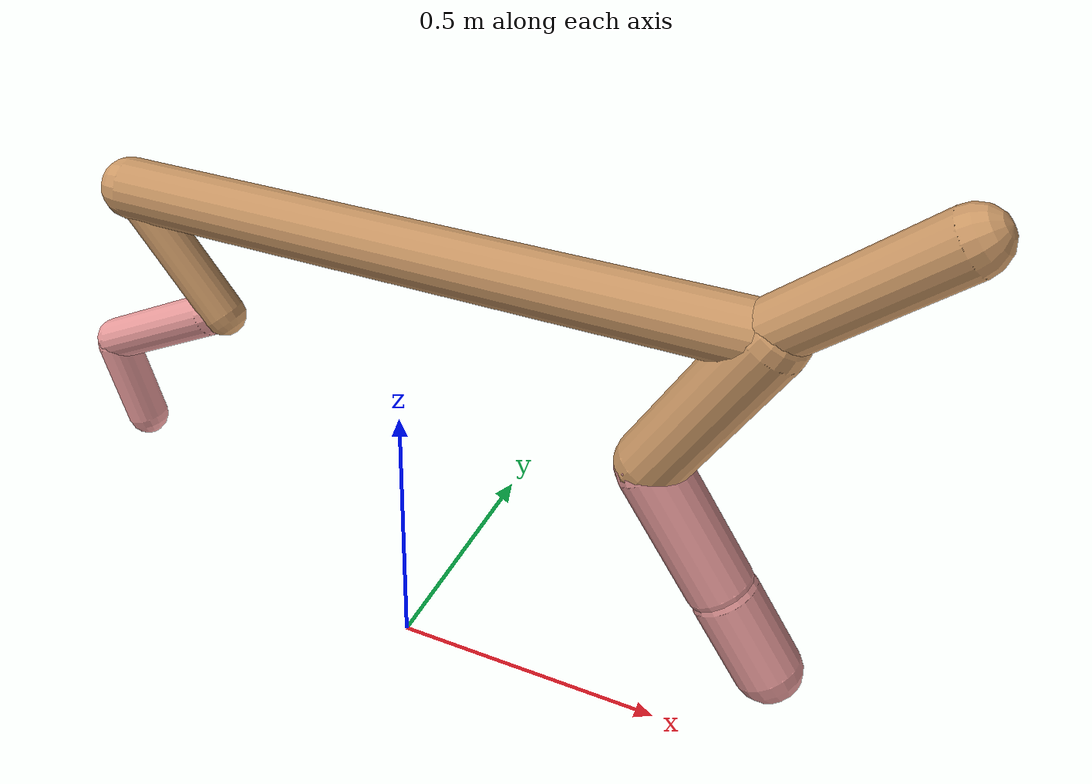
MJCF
<mujoco model="cheetah">
  <compiler angle="radian" coordinate="local" inertiafromgeom="true" settotalmass="14" />
  <default>
    <joint armature=".1" damping=".01" limited="true" solimplimit="0 .8 .03" solreflimit=".02 1" stiffness="8" />
    <geom conaffinity="0" condim="3" contype="1" friction="0.8 .1 .1" rgba="0.8 0.6 .4 1" solimp="0.0 0.8 0.01" solref="0.02 1" />
    <motor ctrllimited="true" ctrlrange="-1 1" />
  </default>
  <size nstack="300000" nuser_geom="1" />
  <option gravity="0 0 -9.81" timestep="0.01" />
  <worldbody>
    <body name="torso" pos="0.0 0.0 0.8224969269161975">
      <joint armature="0" axis="1 0 0" damping="0" limited="false" name="ignorex" pos="0 0 0" stiffness="0" type="slide" />
      <joint armature="0" axis="0 0 1" damping="0" limited="false" name="ignorez" pos="0 0 0" stiffness="0" type="slide" />
      <joint armature="0" axis="0 1 0" damping="0" limited="false" name="ignorey" pos="0 0 0" stiffness="0" type="hinge" />
      <geom fromto="-0.5 0.0 0.0 0.5957161957488345 0.0 0.0" name="torso" size="0.052263111600504925" type="capsule" />
      <geom axisangle="0 1 0 .87" name="head" pos="0.6957161957488344 0.0 0.1" size="0.04977995060768844 0.15" type="capsule" />

      <body name="bthigh" pos="-.5 0 0">
        <joint axis="0 1 0" damping="6" name="bthigh" pos="0 0 0" range="-.52 1.05" stiffness="240" type="hinge" />
        <geom axisangle="0 1 0 -3.8" name="bthigh" pos="0.08463727229179638 0.0 -0.11002845397933529" size="0.03764821632643241 0.11980325312481914" type="capsule" />
        <body name="bshin" pos="0.12927454458359275 0.0 -0.21005690795867057">
          <joint axis="0 1 0" damping="4.5" name="bshin" pos="0 0 0" range="-.785 .785" stiffness="180" type="hinge" />
          <geom axisangle="0 1 0 -2.03" name="bshin" pos="-0.1166862184173408 0.0 -0.0583431092086704" rgba="0.9 0.6 0.6 1" size="0.03764821632643241 0.12393439978429566" type="capsule" />
          <body name="bfoot" pos="-0.2333724368346816 0.0 -0.1166862184173408">
            <joint axis="0 1 0" damping="3" name="bfoot" pos="0 0 0" range="-.4 .785" stiffness="120" type="hinge" />
            <geom axisangle="0 1 0 -.27" name="bfoot" pos="0.025173666711253564 0.0 -0.08139485569971987" rgba="0.9 0.6 0.6 1" size="0.03764821632643241 0.07766555719815862" type="capsule" />
            <inertial mass="10" />
          </body>
        </body>
      </body>
      <body name="fthigh" pos="0.5957161957488344 0.0 0.0">
        <joint axis="0 1 0" damping="4.5" name="fthigh" pos="0 0 0" range="-1.5 0.8" stiffness="180" type="hinge" />
        <geom axisangle="0 1 0 .52" name="fthigh" pos="-0.07858693801371569 0.0 -0.13472046516636974" size="0.058223732577405124 0.15004193648520323" type="capsule" />
        <body name="fshin" pos="-0.15717387602743138 0.0 -0.26944093033273947">
          <joint axis="0 1 0" damping="3" name="fshin" pos="0 0 0" range="-1.2 1.1" stiffness="120" type="hinge" />
          <geom axisangle="0 1 0 -.6" name="fshin" pos="0.07295230556479709 0.0 -0.10101088462818059" rgba="0.9 0.6 0.6 1" size="0.058223732577405124 0.11958229524384616" type="capsule" />
          <body name="ffoot" pos="0.14590461112959419 0.0 -0.20202176925636117">
            <joint axis="0 1 0" damping="1.5" name="ffoot" pos="0 0 0" range="-3.1 -0.3" stiffness="60" type="hinge" />
            <geom axisangle="0 1 0 -.6" name="ffoot" pos="0.049850292907924275 0.0 -0.07754490007899333" rgba="0.9 0.6 0.6 1" size="0.058223732577405124 0.07896944025537012" type="capsule" />
            <inertial mass="10" />
          </body>
        </body>
      </body>
    </body>
  </worldbody>
  <actuator>
    <motor gear="120" joint="bthigh" name="bthigh" />
    <motor gear="90" joint="bshin" name="bshin" />
    <motor gear="60" joint="bfoot" name="bfoot" />
    <motor gear="120" joint="fthigh" name="fthigh" />
    <motor gear="60" joint="fshin" name="fshin" />
    <motor gear="30" joint="ffoot" name="ffoot" />
  </actuator>
</mujoco>
